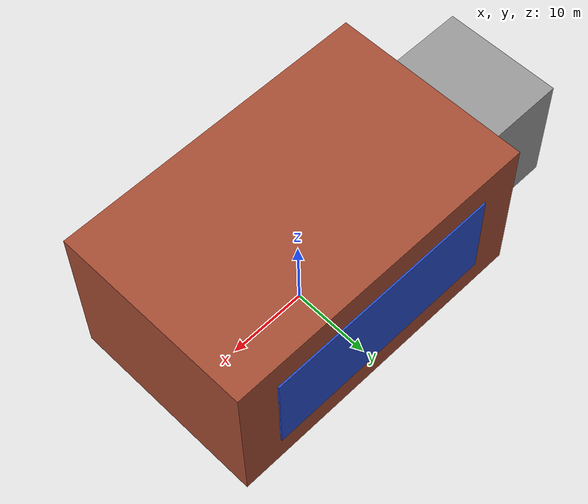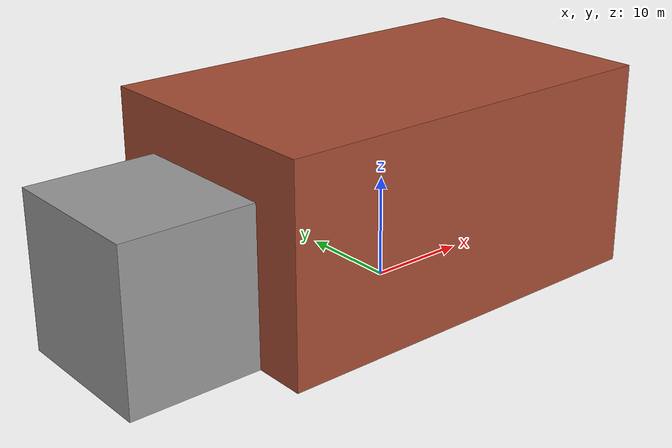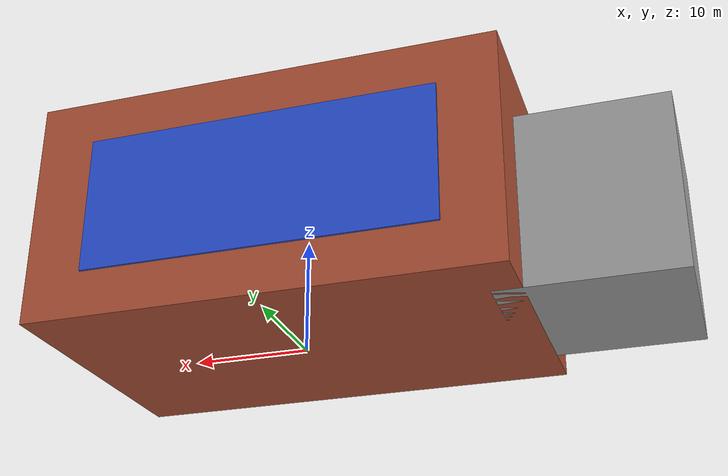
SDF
<?xml version="1.0" ?>
<sdf version="1.6">
  <model name="academic_building">
    <static>true</static>
    <link name="link">
      <collision name="collision_main">
        <pose>0 0 10 0 0 0</pose>
        <geometry>
          <box>
            <size>40 25 20</size>
          </box>
        </geometry>
      </collision>
      <collision name="collision_wing">
        <pose>-25 0 7.5 0 0 0</pose>
        <geometry>
          <box>
            <size>15 15 15</size>
          </box>
        </geometry>
      </collision>
      <visual name="visual_main">
        <pose>0 0 10 0 0 0</pose>
        <geometry>
          <box>
            <size>40 25 20</size>
          </box>
        </geometry>
        <material>
          <script>
            <uri>file://media/materials/scripts/gazebo.material</uri>
            <name>Gazebo/Bricks</name>
          </script>
        </material>
      </visual>
      <visual name="visual_wing">
        <pose>-25 0 7.5 0 0 0</pose>
        <geometry>
          <box>
            <size>15 15 15</size>
          </box>
        </geometry>
        <material>
          <script>
            <uri>file://media/materials/scripts/gazebo.material</uri>
            <name>Gazebo/Grey</name>
          </script>
        </material>
      </visual>
      <visual name="visual_glass">
        <pose>0 12.6 10 0 0 0</pose>
        <geometry>
          <box>
            <size>30 0.2 12</size>
          </box>
        </geometry>
        <material>
          <script>
            <uri>file://media/materials/scripts/gazebo.material</uri>
            <name>Gazebo/ClearBlueHighlight</name>
          </script>
        </material>
      </visual>
    </link>
  </model>
</sdf>
